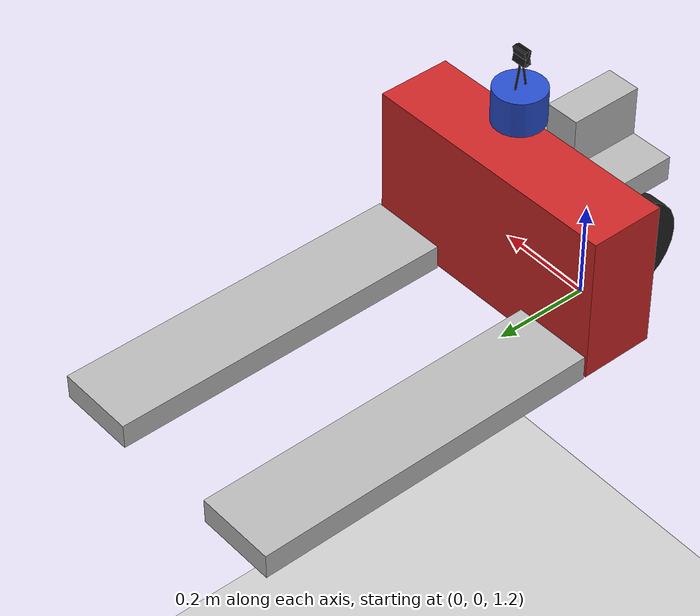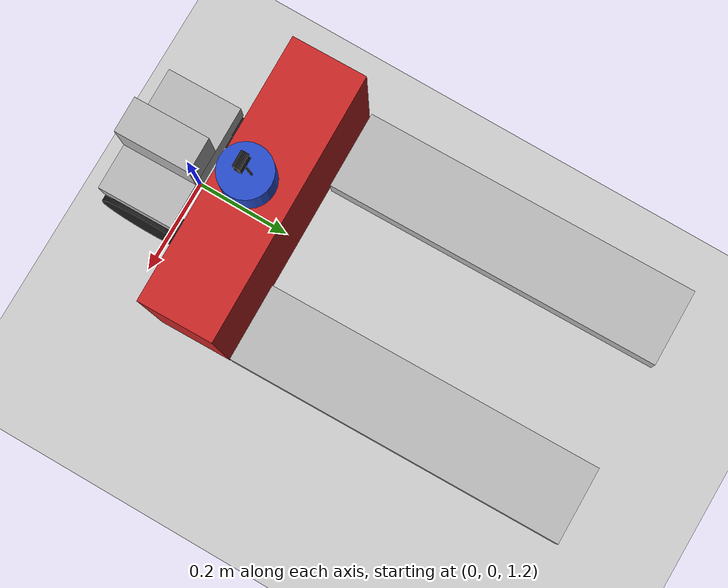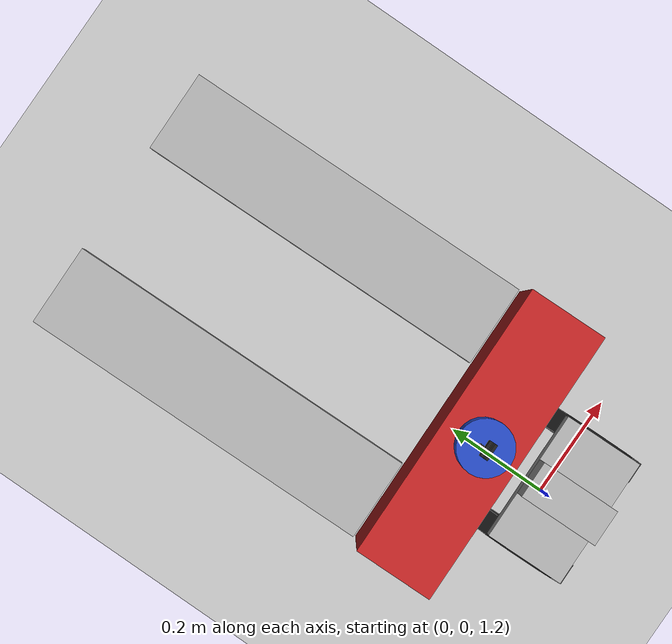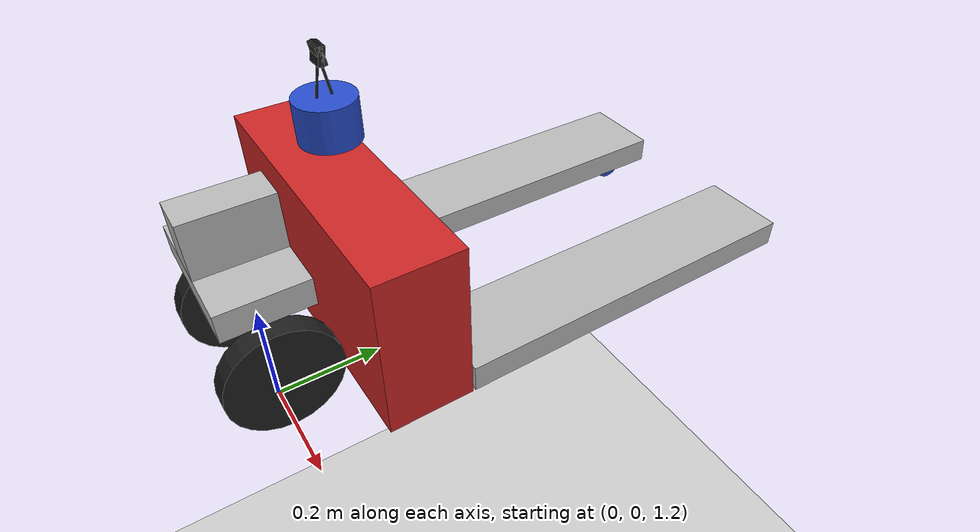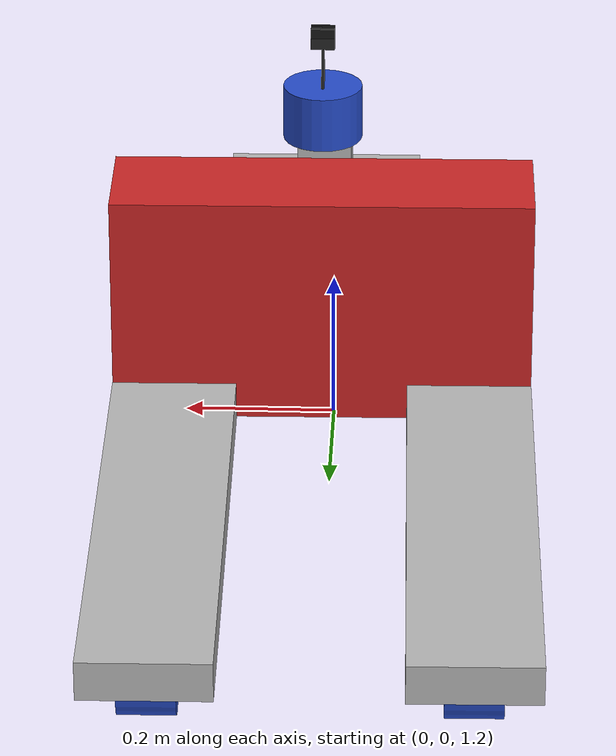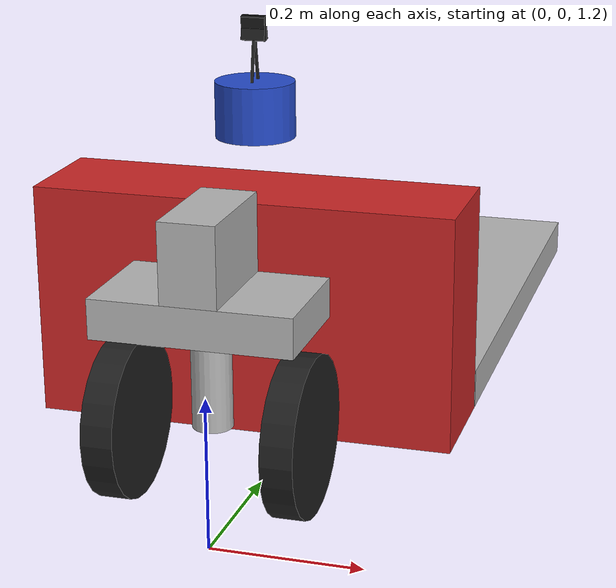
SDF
<sdf version="1.7">
 <world name="default">
  <light name="sun" type="directional">
   <pose>0 0 10 0 -0 0</pose>
   <diffuse>0.8 0.8 0.8 1</diffuse>
   <specular>0.2 0.2 0.2 1</specular>
   <attenuation>
    <range>1000</range>
    <constant>0.9</constant>
    <linear>0.01</linear>
    <quadratic>0.001</quadratic>
   </attenuation>
   <direction>-0.5 0.1 -0.9</direction>
   <spot><inner_angle>0</inner_angle><outer_angle>0</outer_angle><falloff>0</falloff></spot>
  </light>
  <gravity>0 0 -9.8</gravity>
  <magnetic_field>6e-06 2.3e-05 -4.2e-05</magnetic_field>
  <atmosphere type="adiabatic"/>
  <physics type="ode">
   <max_step_size>0.0001</max_step_size>
   <real_time_factor>1</real_time_factor>
   <real_time_update_rate>10000</real_time_update_rate>
  </physics>
  <scene><ambient>1 1 1 1</ambient><background>0.7 0.7 0.7 1</background><shadows>1</shadows></scene>
  <spherical_coordinates>
   <surface_model>EARTH_WGS84</surface_model>
   <latitude_deg>0</latitude_deg>
   <longitude_deg>0</longitude_deg>
   <elevation>0</elevation>
   <heading_deg>0</heading_deg>
  </spherical_coordinates>
  <model name="ground_plane">
   <static>1</static>
   <link name="link">
    <collision name="collision">
     <geometry><plane><normal>0 0 1</normal><size>100 100</size></plane></geometry>
     <surface>
      <contact><collide_bitmask>65535</collide_bitmask></contact>
      <friction><ode><mu>100</mu><mu2>50</mu2></ode></friction>
     </surface>
     <max_contacts>20</max_contacts>
    </collision>
    <visual name="visual">
     <cast_shadows>0</cast_shadows>
     <geometry><plane><normal>0 0 1</normal><size>100 100</size></plane></geometry>
     <material>
      <script><uri>file://media/materials/scripts/gazebo.material</uri><name>Gazebo/Grey</name></script>
     </material>
    </visual>
   </link>
   <pose>-5.10672 4.65884 0 0 -0 0</pose>
  </model>
  <model name="my_bot">
   <link name="base_link">
    <inertial>
     <pose>0 0 0.25 0 -0 0</pose>
     <mass>2</mass>
     <inertia>
      <ixx>0.00416667</ixx>
      <ixy>0</ixy>
      <ixz>0</ixz>
      <iyy>0.0108333</iyy>
      <iyz>0</iyz>
      <izz>0.0141667</izz>
     </inertia>
    </inertial>
    <collision name="base_link_fixed_joint_lump__base_plate_collision">
     <pose>0 0 0.25 0 -0 0</pose>
     <geometry><box><size>0.25 0.15 0.05</size></box></geometry>
    </collision>
    <visual name="base_link_fixed_joint_lump__base_plate_visual">
     <pose>0 0 0.25 0 -0 0</pose>
     <geometry><box><size>0.25 0.15 0.05</size></box></geometry>
    </visual>
   </link>
   <joint name="fork_wheel_left_joint" type="revolute">
    <pose relative_to="base_link">-0.19 0.9 0.0325 3.14159 1.57079 3.14159</pose>
    <parent>base_link</parent>
    <child>fork_wheel_left</child>
    <axis>
     <xyz>0 0 1</xyz>
     <limit><lower>-1e+16</lower><upper>1e+16</upper></limit>
     <dynamics>
      <damping>0.1</damping>
      <friction>0.1</friction>
      <spring_reference>0</spring_reference>
      <spring_stiffness>0</spring_stiffness>
     </dynamics>
    </axis>
   </joint>
   <link name="fork_wheel_left">
    <pose relative_to="fork_wheel_left_joint">0 0 0 0 -0 0</pose>
    <inertial>
     <mass>0.3</mass>
     <inertia>
      <ixx>0.000201719</ixx>
      <ixy>0</ixy>
      <ixz>0</ixz>
      <iyy>0.000201719</iyy>
      <iyz>0</iyz>
      <izz>0.000158437</izz>
     </inertia>
    </inertial>
    <collision name="fork_wheel_left_collision">
     <geometry><cylinder><length>0.07</length><radius>0.0325</radius></cylinder></geometry>
     <surface><friction><ode><mu>0.9</mu><mu2>1</mu2></ode></friction></surface>
    </collision>
    <visual name="fork_wheel_left_visual">
     <geometry><cylinder><length>0.07</length><radius>0.0325</radius></cylinder></geometry>
     <material>
      <script><name>Gazebo/Blue</name><uri>file://media/materials/scripts/gazebo.material</uri></script>
     </material>
    </visual>
   </link>
   <joint name="fork_wheel_right_joint" type="revolute">
    <pose relative_to="base_link">0.19 0.9 0.0325 3.14159 1.57079 3.14159</pose>
    <parent>base_link</parent>
    <child>fork_wheel_right</child>
    <axis>
     <xyz>0 0 1</xyz>
     <limit><lower>-1e+16</lower><upper>1e+16</upper></limit>
     <dynamics>
      <damping>0.1</damping>
      <friction>0.1</friction>
      <spring_reference>0</spring_reference>
      <spring_stiffness>0</spring_stiffness>
     </dynamics>
    </axis>
   </joint>
   <link name="fork_wheel_right">
    <pose relative_to="fork_wheel_right_joint">0 0 0 0 -0 0</pose>
    <inertial>
     <mass>0.3</mass>
     <inertia>
      <ixx>0.000201719</ixx>
      <ixy>0</ixy>
      <ixz>0</ixz>
      <iyy>0.000201719</iyy>
      <iyz>0</iyz>
      <izz>0.000158437</izz>
     </inertia>
    </inertial>
    <collision name="fork_wheel_right_collision">
     <geometry><cylinder><length>0.07</length><radius>0.0325</radius></cylinder></geometry>
     <surface><friction><ode><mu>0.9</mu><mu2>1</mu2></ode></friction></surface>
    </collision>
    <visual name="fork_wheel_right_visual">
     <geometry><cylinder><length>0.07</length><radius>0.0325</radius></cylinder></geometry>
     <material>
      <script><name>Gazebo/Blue</name><uri>file://media/materials/scripts/gazebo.material</uri></script>
     </material>
    </visual>
   </link>
   <joint name="linear_actuator_joint" type="prismatic">
    <pose relative_to="base_link">0 0 0.275 0 -0 0</pose>
    <parent>base_link</parent>
    <child>linear_actuator</child>
    <axis>
     <xyz>0 0 1</xyz>
     <limit><lower>0</lower><upper>0.12</upper><effort>100</effort><velocity>0.1</velocity></limit>
     <dynamics>
      <damping>0.1</damping>
      <friction>0.1</friction>
      <spring_reference>0</spring_reference>
      <spring_stiffness>0</spring_stiffness>
     </dynamics>
    </axis>
    <physics><ode><limit><cfm>0</cfm><erp>0.2</erp></limit></ode></physics>
   </joint>
   <link name="linear_actuator">
    <pose relative_to="linear_actuator_joint">0 0 0 0 -0 0</pose>
    <inertial>
     <pose>0 0.374799 -0.126418 0 -0 0</pose>
     <mass>42.3</mass>
     <inertia>
      <ixx>3.42238</ixx>
      <ixy>8.65082e-17</ixy>
      <ixz>-2.28344e-17</ixz>
      <iyy>1.65829</iyy>
      <iyz>0.696312</iyz>
      <izz>4.26743</izz>
     </inertia>
    </inertial>
    <collision name="linear_actuator_collision">
     <pose>0 0 0.05 0 -0 0</pose>
     <geometry><box><size>0.07 0.15 0.1</size></box></geometry>
    </collision>
    <collision name="linear_actuator_fixed_joint_lump__frame_box_collision_1">
     <pose>0 0.18 -0.075 0 -0 0</pose>
     <geometry><box><size>0.54 0.15 0.3</size></box></geometry>
    </collision>
    <collision name="linear_actuator_fixed_joint_lump__left_fork_collision_2">
     <pose>-0.19 0.61 -0.2 0 -0 0</pose>
     <geometry><box><size>0.16 0.7 0.05</size></box></geometry>
    </collision>
    <collision name="linear_actuator_fixed_joint_lump__right_fork_collision_3">
     <pose>0.19 0.61 -0.2 0 -0 0</pose>
     <geometry><box><size>0.16 0.7 0.05</size></box></geometry>
    </collision>
    <visual name="linear_actuator_visual">
     <pose>0 0 0.05 0 -0 0</pose>
     <geometry><box><size>0.07 0.15 0.1</size></box></geometry>
    </visual>
    <visual name="linear_actuator_fixed_joint_lump__frame_box_visual_1">
     <pose>0 0.18 -0.075 0 -0 0</pose>
     <geometry><box><size>0.54 0.15 0.3</size></box></geometry>
     <material>
      <script><name>Gazebo/Red</name><uri>file://media/materials/scripts/gazebo.material</uri></script>
     </material>
    </visual>
    <visual name="linear_actuator_fixed_joint_lump__left_fork_visual_2">
     <pose>-0.19 0.61 -0.2 0 -0 0</pose>
     <geometry><box><size>0.16 0.7 0.05</size></box></geometry>
    </visual>
    <visual name="linear_actuator_fixed_joint_lump__lidar_visual_3">
     <pose>0 0.18 0.175 0 -0 0</pose>
     <geometry><cylinder><length>0.07</length><radius>0.05</radius></cylinder></geometry>
     <material>
      <script><name>Gazebo/Blue</name><uri>file://media/materials/scripts/gazebo.material</uri></script>
     </material>
    </visual>
    <visual name="linear_actuator_fixed_joint_lump__camera_link_forks_visual_4">
     <pose>0 0.18 0.275 0 0.18 1.5708</pose>
     <geometry><box><size>0.01 0.03 0.03</size></box></geometry>
     <material>
      <script><name>Gazebo/Black</name><uri>file://media/materials/scripts/gazebo.material</uri></script>
     </material>
    </visual>
    <visual name="linear_actuator_fixed_joint_lump__camera_link_forks_visual_5">
     <pose>-0 0.171049 0.225808 0 0.18 1.5708</pose>
     <geometry><cylinder><length>0.1</length><radius>0.002</radius></cylinder></geometry>
     <material>
      <script><name>Gazebo/Black</name><uri>file://media/materials/scripts/gazebo.material</uri></script>
     </material>
    </visual>
    <visual name="linear_actuator_fixed_joint_lump__camera_link_steering_visual_6">
     <pose>0 0.18 0.275 0 0.18 -1.5708</pose>
     <geometry><box><size>0.01 0.03 0.03</size></box></geometry>
     <material>
      <script><name>Gazebo/Black</name><uri>file://media/materials/scripts/gazebo.material</uri></script>
     </material>
    </visual>
    <visual name="linear_actuator_fixed_joint_lump__camera_link_steering_visual_7">
     <pose>-0 0.188951 0.225808 0 0.18 -1.5708</pose>
     <geometry><cylinder><length>0.1</length><radius>0.002</radius></cylinder></geometry>
     <material>
      <script><name>Gazebo/Black</name><uri>file://media/materials/scripts/gazebo.material</uri></script>
     </material>
    </visual>
    <visual name="linear_actuator_fixed_joint_lump__right_fork_visual_8">
     <pose>0.19 0.61 -0.2 0 -0 0</pose>
     <geometry><box><size>0.16 0.7 0.05</size></box></geometry>
    </visual>
    <sensor name="lidar" type="ray">
     <visualize>0</visualize>
     <update_rate>50</update_rate>
     <ray>
      <scan>
       <horizontal>
        <samples>360</samples>
        <min_angle>-3.1415</min_angle>
        <max_angle>3.1415</max_angle>
        <resolution>1</resolution>
       </horizontal>
       <vertical><samples>16</samples><min_angle>-0.261799</min_angle><max_angle>0.261799</max_angle></vertical>
      </scan>
      <range><min>0.1</min><max>100</max></range>
     </ray>
     <plugin name="gazebo_ros" filename="libgazebo_ros_ray_sensor.so">
      <ros><argument>~/out:=CloudScan</argument></ros>
      <output_type>sensor_msgs/PointCloud2</output_type>
      <frame_name>lidar</frame_name>
     </plugin>
     <pose>0 0.18 0.175 0 -0 0</pose>
    </sensor>
    <sensor name="camera_forks" type="camera">
     <visualize>1</visualize>
     <update_rate>60</update_rate>
     <camera>
      <horizontal_fov>1.089</horizontal_fov>
      <image><format>R8G8B8</format><width>640</width><height>480</height></image>
      <clip><near>0.05</near><far>60</far></clip>
     </camera>
     <plugin name="camera_controller_fork" filename="libgazebo_ros_camera.so">
      <frame_name>camera_link_optical_forks</frame_name>
     </plugin>
     <pose>0 0.18 0.275 0 0.18 1.5708</pose>
    </sensor>
    <sensor name="camera_steering" type="camera">
     <visualize>1</visualize>
     <update_rate>60</update_rate>
     <camera>
      <horizontal_fov>1.089</horizontal_fov>
      <image><format>R8G8B8</format><width>640</width><height>480</height></image>
      <clip><near>0.05</near><far>60</far></clip>
     </camera>
     <plugin name="camera_controller_steering" filename="libgazebo_ros_camera.so">
      <frame_name>camera_link_optical_steering</frame_name>
     </plugin>
     <pose>0 0.18 0.275 0 0.18 -1.5708</pose>
    </sensor>
   </link>
   <joint name="steering_shaft_joint" type="revolute">
    <pose relative_to="base_link">0 0 0.225 0 -0 0</pose>
    <parent>base_link</parent>
    <child>steering_shaft</child>
    <axis>
     <xyz>0 0 1</xyz>
     <limit><lower>-1.5708</lower><upper>1.5708</upper><effort>1000</effort><velocity>6.28319</velocity></limit>
     <dynamics>
      <damping>1.1</damping>
      <friction>0.5</friction>
      <spring_reference>0</spring_reference>
      <spring_stiffness>0</spring_stiffness>
     </dynamics>
    </axis>
   </joint>
   <link name="steering_shaft">
    <pose relative_to="steering_shaft_joint">0 0 0 0 -0 0</pose>
    <inertial>
     <mass>0.5</mass>
     <inertia>
      <ixx>0.000729167</ixx>
      <ixy>0</ixy>
      <ixz>0</ixz>
      <iyy>0.000729167</iyy>
      <iyz>0</iyz>
      <izz>0.00015625</izz>
     </inertia>
    </inertial>
    <visual name="steering_shaft_visual">
     <pose>0 0 -0.0625 0 -0 0</pose>
     <geometry><cylinder><length>0.125</length><radius>0.025</radius></cylinder></geometry>
    </visual>
   </link>
   <joint name="steering_wheel_left_joint" type="revolute">
    <pose relative_to="steering_shaft">0.11 0 -0.125 3.14159 1.57079 3.14159</pose>
    <parent>steering_shaft</parent>
    <child>steering_wheel_left</child>
    <axis>
     <xyz>0 0 1</xyz>
     <limit><lower>-1e+16</lower><upper>1e+16</upper></limit>
     <dynamics>
      <damping>0.01</damping>
      <friction>0.01</friction>
      <spring_reference>0</spring_reference>
      <spring_stiffness>0</spring_stiffness>
     </dynamics>
    </axis>
   </joint>
   <link name="steering_wheel_left">
    <pose relative_to="steering_wheel_left_joint">0 0 0 0 -0 0</pose>
    <inertial>
     <mass>1.5</mass>
     <inertia><ixx>0.00395</ixx><ixy>0</ixy><ixz>0</ixz><iyy>0.00395</iyy><iyz>0</iyz><izz>0.0075</izz></inertia>
    </inertial>
    <collision name="steering_wheel_left_collision">
     <geometry><cylinder><length>0.04</length><radius>0.1</radius></cylinder></geometry>
     <surface><friction><ode><mu>0.9</mu><mu2>0.9</mu2></ode></friction></surface>
    </collision>
    <visual name="steering_wheel_left_visual">
     <geometry><cylinder><length>0.04</length><radius>0.1</radius></cylinder></geometry>
     <material>
      <script><name>Gazebo/Black</name><uri>file://media/materials/scripts/gazebo.material</uri></script>
     </material>
    </visual>
   </link>
   <joint name="steering_wheel_right_joint" type="revolute">
    <pose relative_to="steering_shaft">-0.11 0 -0.125 3.14159 1.57079 3.14159</pose>
    <parent>steering_shaft</parent>
    <child>steering_wheel_right</child>
    <axis>
     <xyz>0 0 1</xyz>
     <limit><lower>-1e+16</lower><upper>1e+16</upper></limit>
     <dynamics>
      <damping>0.01</damping>
      <friction>0.01</friction>
      <spring_reference>0</spring_reference>
      <spring_stiffness>0</spring_stiffness>
     </dynamics>
    </axis>
   </joint>
   <link name="steering_wheel_right">
    <pose relative_to="steering_wheel_right_joint">0 0 0 0 -0 0</pose>
    <inertial>
     <mass>1.5</mass>
     <inertia><ixx>0.00395</ixx><ixy>0</ixy><ixz>0</ixz><iyy>0.00395</iyy><iyz>0</iyz><izz>0.0075</izz></inertia>
    </inertial>
    <collision name="steering_wheel_right_collision">
     <geometry><cylinder><length>0.04</length><radius>0.1</radius></cylinder></geometry>
     <surface><friction><ode><mu>0.9</mu><mu2>0.9</mu2></ode></friction></surface>
    </collision>
    <visual name="steering_wheel_right_visual">
     <geometry><cylinder><length>0.04</length><radius>0.1</radius></cylinder></geometry>
     <material>
      <script><name>Gazebo/Black</name><uri>file://media/materials/scripts/gazebo.material</uri></script>
     </material>
    </visual>
   </link>
   <static>0</static>
   <plugin name="gazebo_ros2_control" filename="libgazebo_ros2_control.so">
    <parameters>/home/viktor/Desktop/ros2_ws/install/articubot_one/share/articubot_one/config/my_controllers.yaml</parameters>
    <parameters>/home/viktor/Desktop/ros2_ws/install/articubot_one/share/articubot_one/config/gaz_ros2_ctl_use_sim.yaml</parameters>
   </plugin>
   <pose>0.011847 -0.007295 1.27 4e-06 -8e-06 0.014015</pose>
  </model>
 </world>
</sdf>
